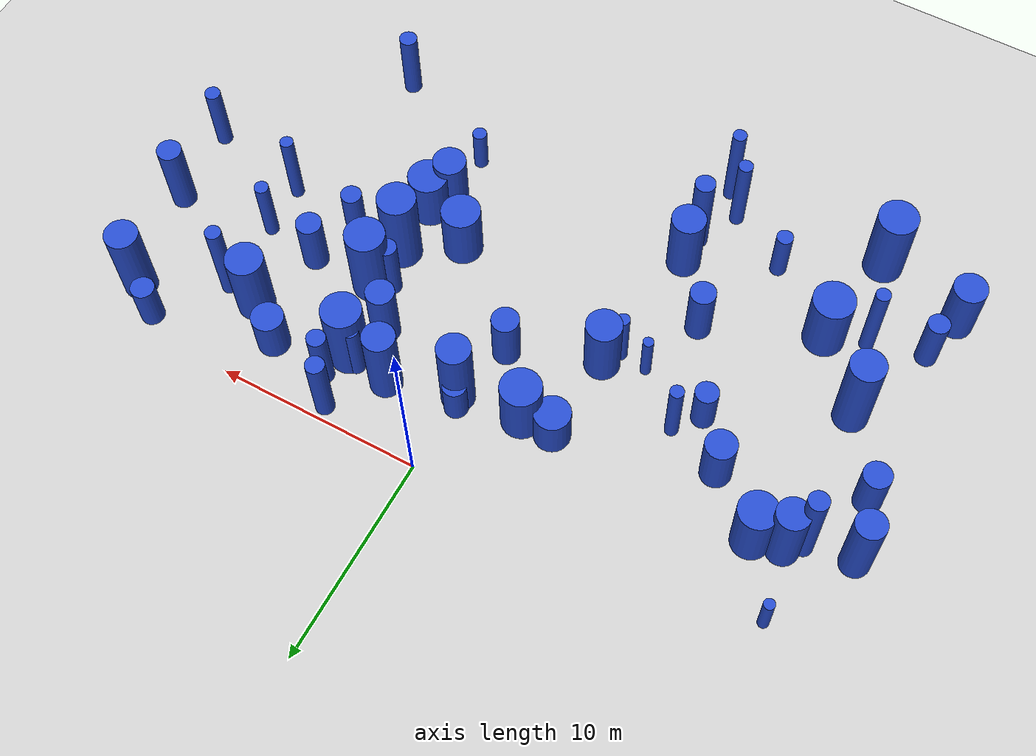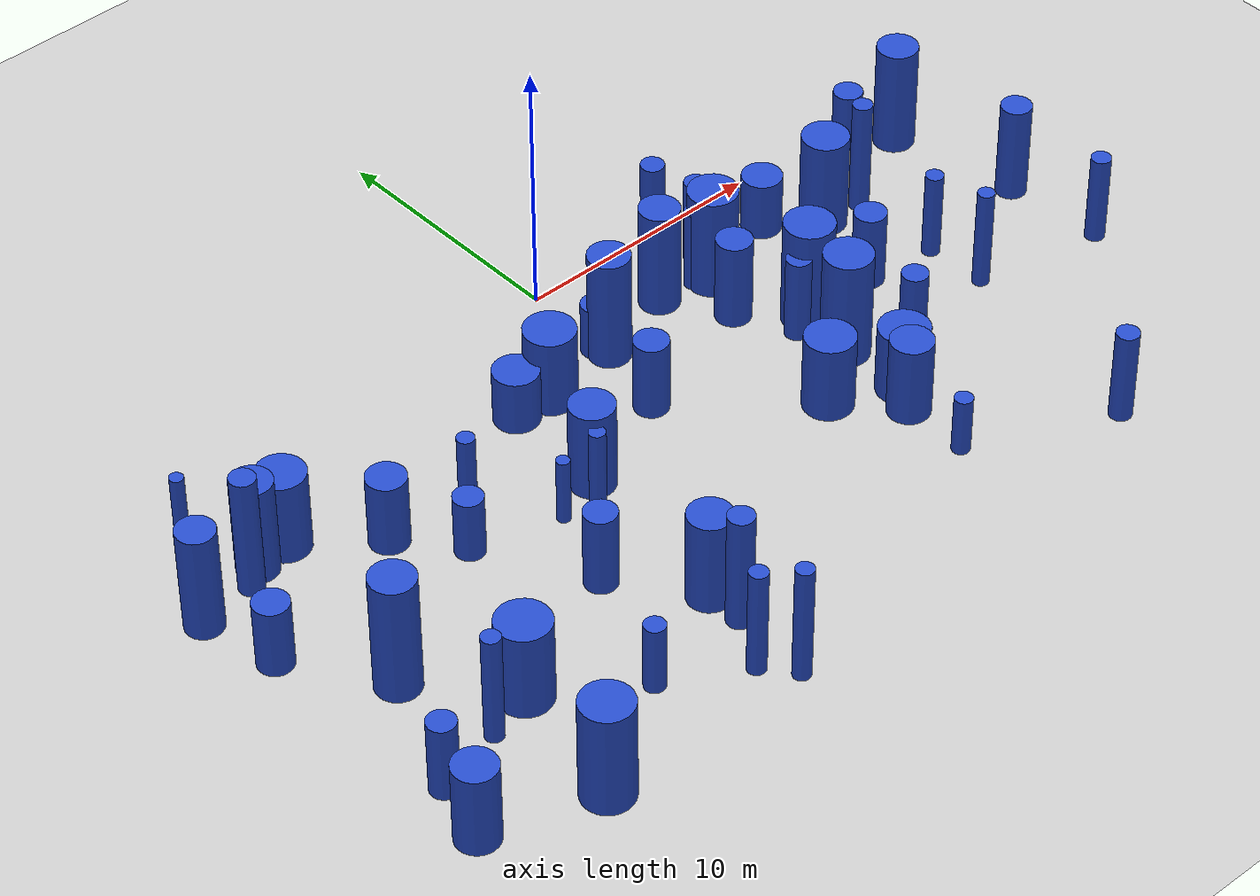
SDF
<sdf version="1.7">
 <world name="default">
  <model name="ground_plane">
   <static>1</static>
   <link name="link">
    <collision name="collision">
     <geometry><plane><normal>0 0 1</normal><size>100 100</size></plane></geometry>
     <surface>
      <contact><collide_bitmask>65535</collide_bitmask></contact>
      <friction><ode><mu>100</mu><mu2>50</mu2></ode></friction>
     </surface>
    </collision>
    <visual name="visual">
     <cast_shadows>0</cast_shadows>
     <geometry><plane><normal>0 0 1</normal><size>100 100</size></plane></geometry>
     <material>
      <script><uri>file://media/materials/scripts/gazebo.material</uri><name>Gazebo/Grey</name></script>
     </material>
    </visual>
   </link>
  </model>
  <model name="6">
   <static>0</static>
   <link name="link">
    <inertial>
     <mass>2</mass>
     <inertia><ixx>1.16849</ixx><ixy>0</ixy><ixz>0</ixz><iyy>1.16849</iyy><iyz>0</iyz><izz>0.30328</izz></inertia>
    </inertial>
    <collision name="collision">
     <geometry><cylinder><length>2.47004</length><radius>0.550708</radius></cylinder></geometry>
     <surface><contact><collide_without_contact>1</collide_without_contact></contact></surface>
    </collision>
    <visual name="visual">
     <geometry><cylinder><length>2.47004</length><radius>0.550708</radius></cylinder></geometry>
     <material>
      <script><uri>file://media/materials/scripts/gazebo.material</uri><name>Gazebo/Blue</name></script>
     </material>
    </visual>
    <gravity>0</gravity>
   </link>
   <pose>-10.2072 -8.31886 1.23502 0 -0 0</pose>
  </model>
  <model name="28">
   <static>0</static>
   <link name="link">
    <inertial>
     <mass>2</mass>
     <inertia><ixx>1.94852</ixx><ixy>0</ixy><ixz>0</ixz><iyy>1.94852</iyy><iyz>0</iyz><izz>0.176047</izz></inertia>
    </inertial>
    <collision name="collision">
     <geometry><cylinder><length>3.3411</length><radius>0.41958</radius></cylinder></geometry>
     <surface><contact><collide_without_contact>1</collide_without_contact></contact></surface>
    </collision>
    <visual name="visual">
     <geometry><cylinder><length>3.3411</length><radius>0.41958</radius></cylinder></geometry>
     <material>
      <script><uri>file://media/materials/scripts/gazebo.material</uri><name>Gazebo/Blue</name></script>
     </material>
    </visual>
    <gravity>0</gravity>
   </link>
   <pose>4.86112 -3.12202 1.67055 0 -0 0</pose>
  </model>
  <model name="40">
   <static>0</static>
   <link name="link">
    <inertial>
     <mass>2</mass>
     <inertia><ixx>2.63983</ixx><ixy>0</ixy><ixz>0</ixz><iyy>2.63983</iyy><iyz>0</iyz><izz>0.666975</izz></inertia>
    </inertial>
    <collision name="collision">
     <geometry><cylinder><length>3.71996</length><radius>0.816686</radius></cylinder></geometry>
     <surface><contact><collide_without_contact>1</collide_without_contact></contact></surface>
    </collision>
    <visual name="visual">
     <geometry><cylinder><length>3.71996</length><radius>0.816686</radius></cylinder></geometry>
     <material>
      <script><uri>file://media/materials/scripts/gazebo.material</uri><name>Gazebo/Blue</name></script>
     </material>
    </visual>
    <gravity>0</gravity>
   </link>
   <pose>-5.79736 -15.3255 1.85998 0 -0 0</pose>
  </model>
  <model name="67">
   <static>0</static>
   <link name="link">
    <inertial>
     <mass>2</mass>
     <inertia><ixx>2.79637</ixx><ixy>0</ixy><ixz>0</ixz><iyy>2.79637</iyy><iyz>0</iyz><izz>0.102595</izz></inertia>
    </inertial>
    <collision name="collision">
     <geometry><cylinder><length>4.05837</length><radius>0.320305</radius></cylinder></geometry>
     <surface><contact><collide_without_contact>1</collide_without_contact></contact></surface>
    </collision>
    <visual name="visual">
     <geometry><cylinder><length>4.05837</length><radius>0.320305</radius></cylinder></geometry>
     <material>
      <script><uri>file://media/materials/scripts/gazebo.material</uri><name>Gazebo/Blue</name></script>
     </material>
    </visual>
    <gravity>0</gravity>
   </link>
   <pose>12.5441 -9.98519 2.02919 0 -0 0</pose>
  </model>
  <model name="76">
   <static>0</static>
   <link name="link">
    <inertial>
     <mass>2</mass>
     <inertia><ixx>2.26784</ixx><ixy>0</ixy><ixz>0</ixz><iyy>2.26784</iyy><iyz>0</iyz><izz>0.465328</izz></inertia>
    </inertial>
    <collision name="collision">
     <geometry><cylinder><length>3.49443</length><radius>0.68215</radius></cylinder></geometry>
     <surface><contact><collide_without_contact>1</collide_without_contact></contact></surface>
    </collision>
    <visual name="visual">
     <geometry><cylinder><length>3.49443</length><radius>0.68215</radius></cylinder></geometry>
     <material>
      <script><uri>file://media/materials/scripts/gazebo.material</uri><name>Gazebo/Blue</name></script>
     </material>
    </visual>
    <gravity>0</gravity>
   </link>
   <pose>4.65201 -5.35189 1.74722 0 -0 0</pose>
  </model>
  <model name="80">
   <static>0</static>
   <link name="link">
    <inertial>
     <mass>2</mass>
     <inertia><ixx>3.71121</ixx><ixy>0</ixy><ixz>0</ixz><iyy>3.71121</iyy><iyz>0</iyz><izz>0.629149</izz></inertia>
    </inertial>
    <collision name="collision">
     <geometry><cylinder><length>4.5144</length><radius>0.793189</radius></cylinder></geometry>
     <surface><contact><collide_without_contact>1</collide_without_contact></contact></surface>
    </collision>
    <visual name="visual">
     <geometry><cylinder><length>4.5144</length><radius>0.793189</radius></cylinder></geometry>
     <material>
      <script><uri>file://media/materials/scripts/gazebo.material</uri><name>Gazebo/Blue</name></script>
     </material>
    </visual>
    <gravity>0</gravity>
   </link>
   <pose>-0.023101 -3.96132 2.2572 0 -0 0</pose>
  </model>
  <model name="81">
   <static>0</static>
   <link name="link">
    <inertial>
     <mass>2</mass>
     <inertia><ixx>2.09463</ixx><ixy>0</ixy><ixz>0</ixz><iyy>2.09463</iyy><iyz>0</iyz><izz>0.116243</izz></inertia>
    </inertial>
    <collision name="collision">
     <geometry><cylinder><length>3.49558</length><radius>0.340944</radius></cylinder></geometry>
     <surface><contact><collide_without_contact>1</collide_without_contact></contact></surface>
    </collision>
    <visual name="visual">
     <geometry><cylinder><length>3.49558</length><radius>0.340944</radius></cylinder></geometry>
     <material>
      <script><uri>file://media/materials/scripts/gazebo.material</uri><name>Gazebo/Blue</name></script>
     </material>
    </visual>
    <gravity>0</gravity>
   </link>
   <pose>12.4398 -7.55854 1.74779 0 -0 0</pose>
  </model>
  <model name="98">
   <static>0</static>
   <link name="link">
    <inertial>
     <mass>2</mass>
     <inertia><ixx>3.32763</ixx><ixy>0</ixy><ixz>0</ixz><iyy>3.32763</iyy><iyz>0</iyz><izz>0.121645</izz></inertia>
    </inertial>
    <collision name="collision">
     <geometry><cylinder><length>4.42729</length><radius>0.348777</radius></cylinder></geometry>
     <surface><contact><collide_without_contact>1</collide_without_contact></contact></surface>
    </collision>
    <visual name="visual">
     <geometry><cylinder><length>4.42729</length><radius>0.348777</radius></cylinder></geometry>
     <material>
      <script><uri>file://media/materials/scripts/gazebo.material</uri><name>Gazebo/Blue</name></script>
     </material>
    </visual>
    <gravity>0</gravity>
   </link>
   <pose>-15.192 -15.3643 2.21364 0 -0 0</pose>
  </model>
  <model name="110">
   <static>0</static>
   <link name="link">
    <inertial>
     <mass>2</mass>
     <inertia><ixx>3.46082</ixx><ixy>0</ixy><ixz>0</ixz><iyy>3.46082</iyy><iyz>0</iyz><izz>0.623462</izz></inertia>
    </inertial>
    <collision name="collision">
     <geometry><cylinder><length>4.34679</length><radius>0.789596</radius></cylinder></geometry>
     <surface><contact><collide_without_contact>1</collide_without_contact></contact></surface>
    </collision>
    <visual name="visual">
     <geometry><cylinder><length>4.34679</length><radius>0.789596</radius></cylinder></geometry>
     <material>
      <script><uri>file://media/materials/scripts/gazebo.material</uri><name>Gazebo/Blue</name></script>
     </material>
    </visual>
    <gravity>0</gravity>
   </link>
   <pose>16.1069 -1.96829 2.17339 0 -0 0</pose>
  </model>
  <model name="122">
   <static>0</static>
   <link name="link">
    <inertial>
     <mass>2</mass>
     <inertia><ixx>3.02054</ixx><ixy>0</ixy><ixz>0</ixz><iyy>3.02054</iyy><iyz>0</iyz><izz>0.797746</izz></inertia>
    </inertial>
    <collision name="collision">
     <geometry><cylinder><length>3.9661</length><radius>0.893166</radius></cylinder></geometry>
     <surface><contact><collide_without_contact>1</collide_without_contact></contact></surface>
    </collision>
    <visual name="visual">
     <geometry><cylinder><length>3.9661</length><radius>0.893166</radius></cylinder></geometry>
     <material>
      <script><uri>file://media/materials/scripts/gazebo.material</uri><name>Gazebo/Blue</name></script>
     </material>
    </visual>
    <gravity>0</gravity>
   </link>
   <pose>10.7219 -3.69549 1.98305 0 -0 0</pose>
  </model>
  <model name="139">
   <static>0</static>
   <link name="link">
    <inertial>
     <mass>2</mass>
     <inertia><ixx>2.7254</ixx><ixy>0</ixy><ixz>0</ixz><iyy>2.7254</iyy><iyz>0</iyz><izz>0.347029</izz></inertia>
    </inertial>
    <collision name="collision">
     <geometry><cylinder><length>3.91297</length><radius>0.589092</radius></cylinder></geometry>
     <surface><contact><collide_without_contact>1</collide_without_contact></contact></surface>
    </collision>
    <visual name="visual">
     <geometry><cylinder><length>3.91297</length><radius>0.589092</radius></cylinder></geometry>
     <material>
      <script><uri>file://media/materials/scripts/gazebo.material</uri><name>Gazebo/Blue</name></script>
     </material>
    </visual>
    <gravity>0</gravity>
   </link>
   <pose>17.177 -7.04162 1.95648 0 -0 0</pose>
  </model>
  <model name="142">
   <static>0</static>
   <link name="link">
    <inertial>
     <mass>2</mass>
     <inertia><ixx>2.45958</ixx><ixy>0</ixy><ixz>0</ixz><iyy>2.45958</iyy><iyz>0</iyz><izz>0.99276</izz></inertia>
    </inertial>
    <collision name="collision">
     <geometry><cylinder><length>3.43208</length><radius>0.996374</radius></cylinder></geometry>
     <surface><contact><collide_without_contact>1</collide_without_contact></contact></surface>
    </collision>
    <visual name="visual">
     <geometry><cylinder><length>3.43208</length><radius>0.996374</radius></cylinder></geometry>
     <material>
      <script><uri>file://media/materials/scripts/gazebo.material</uri><name>Gazebo/Blue</name></script>
     </material>
    </visual>
    <gravity>0</gravity>
   </link>
   <pose>-13.3166 -14.7149 1.71604 0 -0 0</pose>
  </model>
  <model name="156">
   <static>0</static>
   <link name="link">
    <inertial>
     <mass>2</mass>
     <inertia><ixx>2.3637</ixx><ixy>0</ixy><ixz>0</ixz><iyy>2.3637</iyy><iyz>0</iyz><izz>0.186598</izz></inertia>
    </inertial>
    <collision name="collision">
     <geometry><cylinder><length>3.69085</length><radius>0.431969</radius></cylinder></geometry>
     <surface><contact><collide_without_contact>1</collide_without_contact></contact></surface>
    </collision>
    <visual name="visual">
     <geometry><cylinder><length>3.69085</length><radius>0.431969</radius></cylinder></geometry>
     <material>
      <script><uri>file://media/materials/scripts/gazebo.material</uri><name>Gazebo/Blue</name></script>
     </material>
    </visual>
    <gravity>0</gravity>
   </link>
   <pose>10.9457 -18.298 1.84543 0 -0 0</pose>
  </model>
  <model name="163">
   <static>0</static>
   <link name="link">
    <inertial>
     <mass>2</mass>
     <inertia><ixx>3.32373</ixx><ixy>0</ixy><ixz>0</ixz><iyy>3.32373</iyy><iyz>0</iyz><izz>0.890012</izz></inertia>
    </inertial>
    <collision name="collision">
     <geometry><cylinder><length>4.156</length><radius>0.943405</radius></cylinder></geometry>
     <surface><contact><collide_without_contact>1</collide_without_contact></contact></surface>
    </collision>
    <visual name="visual">
     <geometry><cylinder><length>4.156</length><radius>0.943405</radius></cylinder></geometry>
     <material>
      <script><uri>file://media/materials/scripts/gazebo.material</uri><name>Gazebo/Blue</name></script>
     </material>
    </visual>
    <gravity>0</gravity>
   </link>
   <pose>5.40554 -3.43404 2.078 0 -0 0</pose>
  </model>
  <model name="192">
   <static>0</static>
   <link name="link">
    <inertial>
     <mass>2</mass>
     <inertia><ixx>1.66723</ixx><ixy>0</ixy><ixz>0</ixz><iyy>1.66723</iyy><iyz>0</iyz><izz>0.270355</izz></inertia>
    </inertial>
    <collision name="collision">
     <geometry><cylinder><length>3.03188</length><radius>0.519957</radius></cylinder></geometry>
     <surface><contact><collide_without_contact>1</collide_without_contact></contact></surface>
    </collision>
    <visual name="visual">
     <geometry><cylinder><length>3.03188</length><radius>0.519957</radius></cylinder></geometry>
     <material>
      <script><uri>file://media/materials/scripts/gazebo.material</uri><name>Gazebo/Blue</name></script>
     </material>
    </visual>
    <gravity>0</gravity>
   </link>
   <pose>-17.8523 -16.0476 1.51594 0 -0 0</pose>
  </model>
  <model name="226">
   <static>0</static>
   <link name="link">
    <inertial>
     <mass>2</mass>
     <inertia><ixx>2.07399</ixx><ixy>0</ixy><ixz>0</ixz><iyy>2.07399</iyy><iyz>0</iyz><izz>0.204974</izz></inertia>
    </inertial>
    <collision name="collision">
     <geometry><cylinder><length>3.43933</length><radius>0.45274</radius></cylinder></geometry>
     <surface><contact><collide_without_contact>1</collide_without_contact></contact></surface>
    </collision>
    <visual name="visual">
     <geometry><cylinder><length>3.43933</length><radius>0.45274</radius></cylinder></geometry>
     <material>
      <script><uri>file://media/materials/scripts/gazebo.material</uri><name>Gazebo/Blue</name></script>
     </material>
    </visual>
    <gravity>0</gravity>
   </link>
   <pose>5.89628 -2.02485 1.71967 0 -0 0</pose>
  </model>
  <model name="228">
   <static>0</static>
   <link name="link">
    <inertial>
     <mass>2</mass>
     <inertia><ixx>3.586</ixx><ixy>0</ixy><ixz>0</ixz><iyy>3.586</iyy><iyz>0</iyz><izz>0.906803</izz></inertia>
    </inertial>
    <collision name="collision">
     <geometry><cylinder><length>4.33539</length><radius>0.952262</radius></cylinder></geometry>
     <surface><contact><collide_without_contact>1</collide_without_contact></contact></surface>
    </collision>
    <visual name="visual">
     <geometry><cylinder><length>4.33539</length><radius>0.952262</radius></cylinder></geometry>
     <material>
      <script><uri>file://media/materials/scripts/gazebo.material</uri><name>Gazebo/Blue</name></script>
     </material>
    </visual>
    <gravity>0</gravity>
   </link>
   <pose>6.51412 -7.20933 2.16769 0 -0 0</pose>
  </model>
  <model name="233">
   <static>0</static>
   <link name="link">
    <inertial>
     <mass>2</mass>
     <inertia><ixx>3.66033</ixx><ixy>0</ixy><ixz>0</ixz><iyy>3.66033</iyy><iyz>0</iyz><izz>0.144052</izz></inertia>
    </inertial>
    <collision name="collision">
     <geometry><cylinder><length>4.64003</length><radius>0.379542</radius></cylinder></geometry>
     <surface><contact><collide_without_contact>1</collide_without_contact></contact></surface>
    </collision>
    <visual name="visual">
     <geometry><cylinder><length>4.64003</length><radius>0.379542</radius></cylinder></geometry>
     <material>
      <script><uri>file://media/materials/scripts/gazebo.material</uri><name>Gazebo/Blue</name></script>
     </material>
    </visual>
    <gravity>0</gravity>
   </link>
   <pose>12.3807 -3.8912 2.32001 0 -0 0</pose>
  </model>
  <model name="244">
   <static>0</static>
   <link name="link">
    <inertial>
     <mass>2</mass>
     <inertia><ixx>2.89546</ixx><ixy>0</ixy><ixz>0</ixz><iyy>2.89546</iyy><iyz>0</iyz><izz>0.586213</izz></inertia>
    </inertial>
    <collision name="collision">
     <geometry><cylinder><length>3.95147</length><radius>0.765645</radius></cylinder></geometry>
     <surface><contact><collide_without_contact>1</collide_without_contact></contact></surface>
    </collision>
    <visual name="visual">
     <geometry><cylinder><length>3.95147</length><radius>0.765645</radius></cylinder></geometry>
     <material>
      <script><uri>file://media/materials/scripts/gazebo.material</uri><name>Gazebo/Blue</name></script>
     </material>
    </visual>
    <gravity>0</gravity>
   </link>
   <pose>-15.9743 -4.21282 1.97574 0 -0 0</pose>
  </model>
  <model name="263">
   <static>0</static>
   <link name="link">
    <inertial>
     <mass>2</mass>
     <inertia><ixx>0.907717</ixx><ixy>0</ixy><ixz>0</ixz><iyy>0.907717</iyy><iyz>0</iyz><izz>0.3185</izz></inertia>
    </inertial>
    <collision name="collision">
     <geometry><cylinder><length>2.11915</length><radius>0.564358</radius></cylinder></geometry>
     <surface><contact><collide_without_contact>1</collide_without_contact></contact></surface>
    </collision>
    <visual name="visual">
     <geometry><cylinder><length>2.11915</length><radius>0.564358</radius></cylinder></geometry>
     <material>
      <script><uri>file://media/materials/scripts/gazebo.material</uri><name>Gazebo/Blue</name></script>
     </material>
    </visual>
    <gravity>0</gravity>
   </link>
   <pose>-0.213198 -3.45792 1.05958 0 -0 0</pose>
  </model>
  <model name="271">
   <static>0</static>
   <link name="link">
    <inertial>
     <mass>2</mass>
     <inertia><ixx>2.10472</ixx><ixy>0</ixy><ixz>0</ixz><iyy>2.10472</iyy><iyz>0</iyz><izz>0.064285</izz></inertia>
    </inertial>
    <collision name="collision">
     <geometry><cylinder><length>3.5264</length><radius>0.253545</radius></cylinder></geometry>
     <surface><contact><collide_without_contact>1</collide_without_contact></contact></surface>
    </collision>
    <visual name="visual">
     <geometry><cylinder><length>3.5264</length><radius>0.253545</radius></cylinder></geometry>
     <material>
      <script><uri>file://media/materials/scripts/gazebo.material</uri><name>Gazebo/Blue</name></script>
     </material>
    </visual>
    <gravity>0</gravity>
   </link>
   <pose>5.84705 -3.05767 1.7632 0 -0 0</pose>
  </model>
  <model name="276">
   <static>0</static>
   <link name="link">
    <inertial>
     <mass>2</mass>
     <inertia><ixx>2.0382</ixx><ixy>0</ixy><ixz>0</ixz><iyy>2.0382</iyy><iyz>0</iyz><izz>0.891258</izz></inertia>
    </inertial>
    <collision name="collision">
     <geometry><cylinder><length>3.09118</length><radius>0.944065</radius></cylinder></geometry>
     <surface><contact><collide_without_contact>1</collide_without_contact></contact></surface>
    </collision>
    <visual name="visual">
     <geometry><cylinder><length>3.09118</length><radius>0.944065</radius></cylinder></geometry>
     <material>
      <script><uri>file://media/materials/scripts/gazebo.material</uri><name>Gazebo/Blue</name></script>
     </material>
    </visual>
    <gravity>0</gravity>
   </link>
   <pose>3.81615 -11.0643 1.54559 0 -0 0</pose>
  </model>
  <model name="284">
   <static>0</static>
   <link name="link">
    <inertial>
     <mass>2</mass>
     <inertia><ixx>2.1319</ixx><ixy>0</ixy><ixz>0</ixz><iyy>2.1319</iyy><iyz>0</iyz><izz>0.93525</izz></inertia>
    </inertial>
    <collision name="collision">
     <geometry><cylinder><length>3.16001</length><radius>0.967083</radius></cylinder></geometry>
     <surface><contact><collide_without_contact>1</collide_without_contact></contact></surface>
    </collision>
    <visual name="visual">
     <geometry><cylinder><length>3.16001</length><radius>0.967083</radius></cylinder></geometry>
     <material>
      <script><uri>file://media/materials/scripts/gazebo.material</uri><name>Gazebo/Blue</name></script>
     </material>
    </visual>
    <gravity>0</gravity>
   </link>
   <pose>-3.10761 -4.32778 1.58 0 -0 0</pose>
  </model>
  <model name="292">
   <static>0</static>
   <link name="link">
    <inertial>
     <mass>2</mass>
     <inertia><ixx>1.13013</ixx><ixy>0</ixy><ixz>0</ixz><iyy>1.13013</iyy><iyz>0</iyz><izz>0.317248</izz></inertia>
    </inertial>
    <collision name="collision">
     <geometry><cylinder><length>2.41434</length><radius>0.563248</radius></cylinder></geometry>
     <surface><contact><collide_without_contact>1</collide_without_contact></contact></surface>
    </collision>
    <visual name="visual">
     <geometry><cylinder><length>2.41434</length><radius>0.563248</radius></cylinder></geometry>
     <material>
      <script><uri>file://media/materials/scripts/gazebo.material</uri><name>Gazebo/Blue</name></script>
     </material>
    </visual>
    <gravity>0</gravity>
   </link>
   <pose>14.6753 -0.89582 1.20717 0 -0 0</pose>
  </model>
  <model name="293">
   <static>0</static>
   <link name="link">
    <inertial>
     <mass>2</mass>
     <inertia><ixx>3.19014</ixx><ixy>0</ixy><ixz>0</ixz><iyy>3.19014</iyy><iyz>0</iyz><izz>0.120581</izz></inertia>
    </inertial>
    <collision name="collision">
     <geometry><cylinder><length>4.33348</length><radius>0.347248</radius></cylinder></geometry>
     <surface><contact><collide_without_contact>1</collide_without_contact></contact></surface>
    </collision>
    <visual name="visual">
     <geometry><cylinder><length>4.33348</length><radius>0.347248</radius></cylinder></geometry>
     <material>
      <script><uri>file://media/materials/scripts/gazebo.material</uri><name>Gazebo/Blue</name></script>
     </material>
    </visual>
    <gravity>0</gravity>
   </link>
   <pose>-6.95484 -18.8155 2.16674 0 -0 0</pose>
  </model>
  <model name="298">
   <static>0</static>
   <link name="link">
    <inertial>
     <mass>2</mass>
     <inertia><ixx>2.66262</ixx><ixy>0</ixy><ixz>0</ixz><iyy>2.66262</iyy><iyz>0</iyz><izz>0.202334</izz></inertia>
    </inertial>
    <collision name="collision">
     <geometry><cylinder><length>3.9203</length><radius>0.449815</radius></cylinder></geometry>
     <surface><contact><collide_without_contact>1</collide_without_contact></contact></surface>
    </collision>
    <visual name="visual">
     <geometry><cylinder><length>3.9203</length><radius>0.449815</radius></cylinder></geometry>
     <material>
      <script><uri>file://media/materials/scripts/gazebo.material</uri><name>Gazebo/Blue</name></script>
     </material>
    </visual>
    <gravity>0</gravity>
   </link>
   <pose>5.02042 -0.673322 1.96015 0 -0 0</pose>
  </model>
  <model name="308">
   <static>0</static>
   <link name="link">
    <inertial>
     <mass>2</mass>
     <inertia><ixx>2.47748</ixx><ixy>0</ixy><ixz>0</ixz><iyy>2.47748</iyy><iyz>0</iyz><izz>0.710969</izz></inertia>
    </inertial>
    <collision name="collision">
     <geometry><cylinder><length>3.56819</length><radius>0.84319</radius></cylinder></geometry>
     <surface><contact><collide_without_contact>1</collide_without_contact></contact></surface>
    </collision>
    <visual name="visual">
     <geometry><cylinder><length>3.56819</length><radius>0.84319</radius></cylinder></geometry>
     <material>
      <script><uri>file://media/materials/scripts/gazebo.material</uri><name>Gazebo/Blue</name></script>
     </material>
    </visual>
    <gravity>0</gravity>
   </link>
   <pose>-4.9483 -8.58753 1.78409 0 -0 0</pose>
  </model>
  <model name="310">
   <static>0</static>
   <link name="link">
    <inertial>
     <mass>2</mass>
     <inertia><ixx>1.3329</ixx><ixy>0</ixy><ixz>0</ixz><iyy>1.3329</iyy><iyz>0</iyz><izz>0.156162</izz></inertia>
    </inertial>
    <collision name="collision">
     <geometry><cylinder><length>2.74389</length><radius>0.395173</radius></cylinder></geometry>
     <surface><contact><collide_without_contact>1</collide_without_contact></contact></surface>
    </collision>
    <visual name="visual">
     <geometry><cylinder><length>2.74389</length><radius>0.395173</radius></cylinder></geometry>
     <material>
      <script><uri>file://media/materials/scripts/gazebo.material</uri><name>Gazebo/Blue</name></script>
     </material>
    </visual>
    <gravity>0</gravity>
   </link>
   <pose>-9.90591 -17.1554 1.37194 0 -0 0</pose>
  </model>
  <model name="313">
   <static>0</static>
   <link name="link">
    <inertial>
     <mass>2</mass>
     <inertia><ixx>1.68863</ixx><ixy>0</ixy><ixz>0</ixz><iyy>1.68863</iyy><iyz>0</iyz><izz>0.539098</izz></inertia>
    </inertial>
    <collision name="collision">
     <geometry><cylinder><length>2.91796</length><radius>0.734233</radius></cylinder></geometry>
     <surface><contact><collide_without_contact>1</collide_without_contact></contact></surface>
    </collision>
    <visual name="visual">
     <geometry><cylinder><length>2.91796</length><radius>0.734233</radius></cylinder></geometry>
     <material>
      <script><uri>file://media/materials/scripts/gazebo.material</uri><name>Gazebo/Blue</name></script>
     </material>
    </visual>
    <gravity>0</gravity>
   </link>
   <pose>-11.8883 -6.12727 1.45898 0 -0 0</pose>
  </model>
  <model name="317">
   <static>0</static>
   <link name="link">
    <inertial>
     <mass>2</mass>
     <inertia><ixx>3.7708</ixx><ixy>0</ixy><ixz>0</ixz><iyy>3.7708</iyy><iyz>0</iyz><izz>0.112661</izz></inertia>
    </inertial>
    <collision name="collision">
     <geometry><cylinder><length>4.72089</length><radius>0.335649</radius></cylinder></geometry>
     <surface><contact><collide_without_contact>1</collide_without_contact></contact></surface>
    </collision>
    <visual name="visual">
     <geometry><cylinder><length>4.72089</length><radius>0.335649</radius></cylinder></geometry>
     <material>
      <script><uri>file://media/materials/scripts/gazebo.material</uri><name>Gazebo/Blue</name></script>
     </material>
    </visual>
    <gravity>0</gravity>
   </link>
   <pose>-6.0566 -19.9958 2.36045 0 -0 0</pose>
  </model>
  <model name="327">
   <static>0</static>
   <link name="link">
    <inertial>
     <mass>2</mass>
     <inertia><ixx>3.75409</ixx><ixy>0</ixy><ixz>0</ixz><iyy>3.75409</iyy><iyz>0</iyz><izz>0.234612</izz></inertia>
    </inertial>
    <collision name="collision">
     <geometry><cylinder><length>4.67126</length><radius>0.484368</radius></cylinder></geometry>
     <surface><contact><collide_without_contact>1</collide_without_contact></contact></surface>
    </collision>
    <visual name="visual">
     <geometry><cylinder><length>4.67126</length><radius>0.484368</radius></cylinder></geometry>
     <material>
      <script><uri>file://media/materials/scripts/gazebo.material</uri><name>Gazebo/Blue</name></script>
     </material>
    </visual>
    <gravity>0</gravity>
   </link>
   <pose>-5.82008 -16.8033 2.33563 0 -0 0</pose>
  </model>
  <model name="332">
   <static>0</static>
   <link name="link">
    <inertial>
     <mass>2</mass>
     <inertia>
      <ixx>0.935174</ixx>
      <ixy>0</ixy>
      <ixz>0</ixz>
      <iyy>0.935174</iyy>
      <iyz>0</iyz>
      <izz>0.252871</izz>
     </inertia>
    </inertial>
    <collision name="collision">
     <geometry><cylinder><length>2.20282</length><radius>0.502863</radius></cylinder></geometry>
     <surface><contact><collide_without_contact>1</collide_without_contact></contact></surface>
    </collision>
    <visual name="visual">
     <geometry><cylinder><length>2.20282</length><radius>0.502863</radius></cylinder></geometry>
     <material>
      <script><uri>file://media/materials/scripts/gazebo.material</uri><name>Gazebo/Blue</name></script>
     </material>
    </visual>
    <gravity>0</gravity>
   </link>
   <pose>9.16867 -9.90152 1.10141 0 -0 0</pose>
  </model>
  <model name="339">
   <static>0</static>
   <link name="link">
    <inertial>
     <mass>2</mass>
     <inertia><ixx>4.12566</ixx><ixy>0</ixy><ixz>0</ixz><iyy>4.12566</iyy><iyz>0</iyz><izz>0.223047</izz></inertia>
    </inertial>
    <collision name="collision">
     <geometry><cylinder><length>4.90763</length><radius>0.472279</radius></cylinder></geometry>
     <surface><contact><collide_without_contact>1</collide_without_contact></contact></surface>
    </collision>
    <visual name="visual">
     <geometry><cylinder><length>4.90763</length><radius>0.472279</radius></cylinder></geometry>
     <material>
      <script><uri>file://media/materials/scripts/gazebo.material</uri><name>Gazebo/Blue</name></script>
     </material>
    </visual>
    <gravity>0</gravity>
   </link>
   <pose>-16.6864 -4.7741 2.45381 0 -0 0</pose>
  </model>
  <model name="343">
   <static>0</static>
   <link name="link">
    <inertial>
     <mass>2</mass>
     <inertia><ixx>1.87121</ixx><ixy>0</ixy><ixz>0</ixz><iyy>1.87121</iyy><iyz>0</iyz><izz>0.373129</izz></inertia>
    </inertial>
    <collision name="collision">
     <geometry><cylinder><length>3.17929</length><radius>0.610843</radius></cylinder></geometry>
     <surface><contact><collide_without_contact>1</collide_without_contact></contact></surface>
    </collision>
    <visual name="visual">
     <geometry><cylinder><length>3.17929</length><radius>0.610843</radius></cylinder></geometry>
     <material>
      <script><uri>file://media/materials/scripts/gazebo.material</uri><name>Gazebo/Blue</name></script>
     </material>
    </visual>
    <gravity>0</gravity>
   </link>
   <pose>-7.9807 -12.4049 1.58965 0 -0 0</pose>
  </model>
  <model name="355">
   <static>0</static>
   <link name="link">
    <inertial>
     <mass>2</mass>
     <inertia><ixx>1.75153</ixx><ixy>0</ixy><ixz>0</ixz><iyy>1.75153</iyy><iyz>0</iyz><izz>0.916445</izz></inertia>
    </inertial>
    <collision name="collision">
     <geometry><cylinder><length>2.78565</length><radius>0.957311</radius></cylinder></geometry>
     <surface><contact><collide_without_contact>1</collide_without_contact></contact></surface>
    </collision>
    <visual name="visual">
     <geometry><cylinder><length>2.78565</length><radius>0.957311</radius></cylinder></geometry>
     <material>
      <script><uri>file://media/materials/scripts/gazebo.material</uri><name>Gazebo/Blue</name></script>
     </material>
    </visual>
    <gravity>0</gravity>
   </link>
   <pose>6.29867 -12.2063 1.39283 0 -0 0</pose>
  </model>
  <model name="359">
   <static>0</static>
   <link name="link">
    <inertial>
     <mass>2</mass>
     <inertia><ixx>1.73351</ixx><ixy>0</ixy><ixz>0</ixz><iyy>1.73351</iyy><iyz>0</iyz><izz>0.426729</izz></inertia>
    </inertial>
    <collision name="collision">
     <geometry><cylinder><length>3.02008</length><radius>0.653245</radius></cylinder></geometry>
     <surface><contact><collide_without_contact>1</collide_without_contact></contact></surface>
    </collision>
    <visual name="visual">
     <geometry><cylinder><length>3.02008</length><radius>0.653245</radius></cylinder></geometry>
     <material>
      <script><uri>file://media/materials/scripts/gazebo.material</uri><name>Gazebo/Blue</name></script>
     </material>
    </visual>
    <gravity>0</gravity>
   </link>
   <pose>-0.819002 -7.01784 1.51004 0 -0 0</pose>
  </model>
  <model name="365">
   <static>0</static>
   <link name="link">
    <inertial>
     <mass>2</mass>
     <inertia>
      <ixx>0.961507</ixx>
      <ixy>0</ixy>
      <ixz>0</ixz>
      <iyy>0.961507</iyy>
      <iyz>0</iyz>
      <izz>0.117633</izz>
     </inertia>
    </inertial>
    <collision name="collision">
     <geometry><cylinder><length>2.32726</length><radius>0.342977</radius></cylinder></geometry>
     <surface><contact><collide_without_contact>1</collide_without_contact></contact></surface>
    </collision>
    <visual name="visual">
     <geometry><cylinder><length>2.32726</length><radius>0.342977</radius></cylinder></geometry>
     <material>
      <script><uri>file://media/materials/scripts/gazebo.material</uri><name>Gazebo/Blue</name></script>
     </material>
    </visual>
    <gravity>0</gravity>
   </link>
   <pose>5.55253 -15.8271 1.16363 0 -0 0</pose>
  </model>
  <model name="370">
   <static>0</static>
   <link name="link">
    <inertial>
     <mass>2</mass>
     <inertia><ixx>1.75541</ixx><ixy>0</ixy><ixz>0</ixz><iyy>1.75541</iyy><iyz>0</iyz><izz>0.372277</izz></inertia>
    </inertial>
    <collision name="collision">
     <geometry><cylinder><length>3.06849</length><radius>0.610145</radius></cylinder></geometry>
     <surface><contact><collide_without_contact>1</collide_without_contact></contact></surface>
    </collision>
    <visual name="visual">
     <geometry><cylinder><length>3.06849</length><radius>0.610145</radius></cylinder></geometry>
     <material>
      <script><uri>file://media/materials/scripts/gazebo.material</uri><name>Gazebo/Blue</name></script>
     </material>
    </visual>
    <gravity>0</gravity>
   </link>
   <pose>9.63777 -7.14001 1.53424 0 -0 0</pose>
  </model>
  <model name="374">
   <static>0</static>
   <link name="link">
    <inertial>
     <mass>2</mass>
     <inertia><ixx>2.31438</ixx><ixy>0</ixy><ixz>0</ixz><iyy>2.31438</iyy><iyz>0</iyz><izz>0.106819</izz></inertia>
    </inertial>
    <collision name="collision">
     <geometry><cylinder><length>3.68318</length><radius>0.326832</radius></cylinder></geometry>
     <surface><contact><collide_without_contact>1</collide_without_contact></contact></surface>
    </collision>
    <visual name="visual">
     <geometry><cylinder><length>3.68318</length><radius>0.326832</radius></cylinder></geometry>
     <material>
      <script><uri>file://media/materials/scripts/gazebo.material</uri><name>Gazebo/Blue</name></script>
     </material>
    </visual>
    <gravity>0</gravity>
   </link>
   <pose>-9.23743 -7.10983 1.84159 0 -0 0</pose>
  </model>
  <model name="390">
   <static>0</static>
   <link name="link">
    <inertial>
     <mass>2</mass>
     <inertia><ixx>3.30202</ixx><ixy>0</ixy><ixz>0</ixz><iyy>3.30202</iyy><iyz>0</iyz><izz>0.499873</izz></inertia>
    </inertial>
    <collision name="collision">
     <geometry><cylinder><length>4.27931</length><radius>0.707017</radius></cylinder></geometry>
     <surface><contact><collide_without_contact>1</collide_without_contact></contact></surface>
    </collision>
    <visual name="visual">
     <geometry><cylinder><length>4.27931</length><radius>0.707017</radius></cylinder></geometry>
     <material>
      <script><uri>file://media/materials/scripts/gazebo.material</uri><name>Gazebo/Blue</name></script>
     </material>
    </visual>
    <gravity>0</gravity>
   </link>
   <pose>-18.9429 -5.14863 2.13966 0 -0 0</pose>
  </model>
  <model name="396">
   <static>0</static>
   <link name="link">
    <inertial>
     <mass>2</mass>
     <inertia>
      <ixx>0.872137</ixx>
      <ixy>0</ixy>
      <ixz>0</ixz>
      <iyy>0.872137</iyy>
      <iyz>0</iyz>
      <izz>0.0681759</izz>
     </inertia>
    </inertial>
    <collision name="collision">
     <geometry><cylinder><length>2.24239</length><radius>0.261105</radius></cylinder></geometry>
     <surface><contact><collide_without_contact>1</collide_without_contact></contact></surface>
    </collision>
    <visual name="visual">
     <geometry><cylinder><length>2.24239</length><radius>0.261105</radius></cylinder></geometry>
     <material>
      <script><uri>file://media/materials/scripts/gazebo.material</uri><name>Gazebo/Blue</name></script>
     </material>
    </visual>
    <gravity>0</gravity>
   </link>
   <pose>-16.6334 -0.861944 1.12119 0 -0 0</pose>
  </model>
  <model name="405">
   <static>0</static>
   <link name="link">
    <inertial>
     <mass>2</mass>
     <inertia>
      <ixx>1.19733</ixx>
      <ixy>0</ixy>
      <ixz>0</ixz>
      <iyy>1.19733</iyy>
      <iyz>0</iyz>
      <izz>0.0637175</izz>
     </inertia>
    </inertial>
    <collision name="collision">
     <geometry><cylinder><length>2.64439</length><radius>0.252423</radius></cylinder></geometry>
     <surface><contact><collide_without_contact>1</collide_without_contact></contact></surface>
    </collision>
    <visual name="visual">
     <geometry><cylinder><length>2.64439</length><radius>0.252423</radius></cylinder></geometry>
     <material>
      <script><uri>file://media/materials/scripts/gazebo.material</uri><name>Gazebo/Blue</name></script>
     </material>
    </visual>
    <gravity>0</gravity>
   </link>
   <pose>-6.84782 -9.25591 1.3222 0 -0 0</pose>
  </model>
  <model name="409">
   <static>0</static>
   <link name="link">
    <inertial>
     <mass>2</mass>
     <inertia><ixx>2.2447</ixx><ixy>0</ixy><ixz>0</ixz><iyy>2.2447</iyy><iyz>0</iyz><izz>0.828914</izz></inertia>
    </inertial>
    <collision name="collision">
     <geometry><cylinder><length>3.31382</length><radius>0.910447</radius></cylinder></geometry>
     <surface><contact><collide_without_contact>1</collide_without_contact></contact></surface>
    </collision>
    <visual name="visual">
     <geometry><cylinder><length>3.31382</length><radius>0.910447</radius></cylinder></geometry>
     <material>
      <script><uri>file://media/materials/scripts/gazebo.material</uri><name>Gazebo/Blue</name></script>
     </material>
    </visual>
    <gravity>0</gravity>
   </link>
   <pose>-14.586 -3.95175 1.65691 0 -0 0</pose>
  </model>
  <model name="442">
   <static>0</static>
   <link name="link">
    <inertial>
     <mass>2</mass>
     <inertia><ixx>3.75596</ixx><ixy>0</ixy><ixz>0</ixz><iyy>3.75596</iyy><iyz>0</iyz><izz>0.848715</izz></inertia>
    </inertial>
    <collision name="collision">
     <geometry><cylinder><length>4.47098</length><radius>0.921257</radius></cylinder></geometry>
     <surface><contact><collide_without_contact>1</collide_without_contact></contact></surface>
    </collision>
    <visual name="visual">
     <geometry><cylinder><length>4.47098</length><radius>0.921257</radius></cylinder></geometry>
     <material>
      <script><uri>file://media/materials/scripts/gazebo.material</uri><name>Gazebo/Blue</name></script>
     </material>
    </visual>
    <gravity>0</gravity>
   </link>
   <pose>6.20694 -9.47049 2.23549 0 -0 0</pose>
  </model>
  <model name="445">
   <static>0</static>
   <link name="link">
    <inertial>
     <mass>2</mass>
     <inertia><ixx>2.02982</ixx><ixy>0</ixy><ixz>0</ixz><iyy>2.02982</iyy><iyz>0</iyz><izz>0.64287</izz></inertia>
    </inertial>
    <collision name="collision">
     <geometry><cylinder><length>3.20161</length><radius>0.801792</radius></cylinder></geometry>
     <surface><contact><collide_without_contact>1</collide_without_contact></contact></surface>
    </collision>
    <visual name="visual">
     <geometry><cylinder><length>3.20161</length><radius>0.801792</radius></cylinder></geometry>
     <material>
      <script><uri>file://media/materials/scripts/gazebo.material</uri><name>Gazebo/Blue</name></script>
     </material>
    </visual>
    <gravity>0</gravity>
   </link>
   <pose>5.65716 -13.1938 1.6008 0 -0 0</pose>
  </model>
  <model name="446">
   <static>0</static>
   <link name="link">
    <inertial>
     <mass>2</mass>
     <inertia><ixx>2.21939</ixx><ixy>0</ixy><ixz>0</ixz><iyy>2.21939</iyy><iyz>0</iyz><izz>0.142971</izz></inertia>
    </inertial>
    <collision name="collision">
     <geometry><cylinder><length>3.58991</length><radius>0.378114</radius></cylinder></geometry>
     <surface><contact><collide_without_contact>1</collide_without_contact></contact></surface>
    </collision>
    <visual name="visual">
     <geometry><cylinder><length>3.58991</length><radius>0.378114</radius></cylinder></geometry>
     <material>
      <script><uri>file://media/materials/scripts/gazebo.material</uri><name>Gazebo/Blue</name></script>
     </material>
    </visual>
    <gravity>0</gravity>
   </link>
   <pose>17.5035 -10.9751 1.79495 0 -0 0</pose>
  </model>
  <model name="449">
   <static>0</static>
   <link name="link">
    <inertial>
     <mass>2</mass>
     <inertia><ixx>2.02441</ixx><ixy>0</ixy><ixz>0</ixz><iyy>2.02441</iyy><iyz>0</iyz><izz>0.22915</izz></inertia>
    </inertial>
    <collision name="collision">
     <geometry><cylinder><length>3.38512</length><radius>0.478696</radius></cylinder></geometry>
     <surface><contact><collide_without_contact>1</collide_without_contact></contact></surface>
    </collision>
    <visual name="visual">
     <geometry><cylinder><length>3.38512</length><radius>0.478696</radius></cylinder></geometry>
     <material>
      <script><uri>file://media/materials/scripts/gazebo.material</uri><name>Gazebo/Blue</name></script>
     </material>
    </visual>
    <gravity>0</gravity>
   </link>
   <pose>5.68283 -7.57262 1.69256 0 -0 0</pose>
  </model>
  <model name="455">
   <static>0</static>
   <link name="link">
    <inertial>
     <mass>2</mass>
     <inertia><ixx>3.35732</ixx><ixy>0</ixy><ixz>0</ixz><iyy>3.35732</iyy><iyz>0</iyz><izz>0.589898</izz></inertia>
    </inertial>
    <collision name="collision">
     <geometry><cylinder><length>4.28651</length><radius>0.768048</radius></cylinder></geometry>
     <surface><contact><collide_without_contact>1</collide_without_contact></contact></surface>
    </collision>
    <visual name="visual">
     <geometry><cylinder><length>4.28651</length><radius>0.768048</radius></cylinder></geometry>
     <material>
      <script><uri>file://media/materials/scripts/gazebo.material</uri><name>Gazebo/Blue</name></script>
     </material>
    </visual>
    <gravity>0</gravity>
   </link>
   <pose>3.21447 -3.01818 2.14326 0 -0 0</pose>
  </model>
  <model name="457">
   <static>0</static>
   <link name="link">
    <inertial>
     <mass>2</mass>
     <inertia><ixx>1.22394</ixx><ixy>0</ixy><ixz>0</ixz><iyy>1.22394</iyy><iyz>0</iyz><izz>0.587418</izz></inertia>
    </inertial>
    <collision name="collision">
     <geometry><cylinder><length>2.3625</length><radius>0.766432</radius></cylinder></geometry>
     <surface><contact><collide_without_contact>1</collide_without_contact></contact></surface>
    </collision>
    <visual name="visual">
     <geometry><cylinder><length>2.3625</length><radius>0.766432</radius></cylinder></geometry>
     <material>
      <script><uri>file://media/materials/scripts/gazebo.material</uri><name>Gazebo/Blue</name></script>
     </material>
    </visual>
    <gravity>0</gravity>
   </link>
   <pose>8.86949 -2.35183 1.18125 0 -0 0</pose>
  </model>
  <model name="458">
   <static>0</static>
   <link name="link">
    <inertial>
     <mass>2</mass>
     <inertia><ixx>4.23371</ixx><ixy>0</ixy><ixz>0</ixz><iyy>4.23371</iyy><iyz>0</iyz><izz>0.688042</izz></inertia>
    </inertial>
    <collision name="collision">
     <geometry><cylinder><length>4.83096</length><radius>0.829483</radius></cylinder></geometry>
     <surface><contact><collide_without_contact>1</collide_without_contact></contact></surface>
    </collision>
    <visual name="visual">
     <geometry><cylinder><length>4.83096</length><radius>0.829483</radius></cylinder></geometry>
     <material>
      <script><uri>file://media/materials/scripts/gazebo.material</uri><name>Gazebo/Blue</name></script>
     </material>
    </visual>
    <gravity>0</gravity>
   </link>
   <pose>-16.0074 -11.5591 2.41548 0 -0 0</pose>
  </model>
  <model name="460">
   <static>0</static>
   <link name="link">
    <inertial>
     <mass>2</mass>
     <inertia><ixx>2.08228</ixx><ixy>0</ixy><ixz>0</ixz><iyy>2.08228</iyy><iyz>0</iyz><izz>0.635407</izz></inertia>
    </inertial>
    <collision name="collision">
     <geometry><cylinder><length>3.25384</length><radius>0.797124</radius></cylinder></geometry>
     <surface><contact><collide_without_contact>1</collide_without_contact></contact></surface>
    </collision>
    <visual name="visual">
     <geometry><cylinder><length>3.25384</length><radius>0.797124</radius></cylinder></geometry>
     <material>
      <script><uri>file://media/materials/scripts/gazebo.material</uri><name>Gazebo/Blue</name></script>
     </material>
    </visual>
    <gravity>0</gravity>
   </link>
   <pose>-18.4232 -18.33 1.62692 0 -0 0</pose>
  </model>
  <model name="466">
   <static>0</static>
   <link name="link">
    <inertial>
     <mass>2</mass>
     <inertia><ixx>3.3102</ixx><ixy>0</ixy><ixz>0</ixz><iyy>3.3102</iyy><iyz>0</iyz><izz>0.913904</izz></inertia>
    </inertial>
    <collision name="collision">
     <geometry><cylinder><length>4.13757</length><radius>0.955983</radius></cylinder></geometry>
     <surface><contact><collide_without_contact>1</collide_without_contact></contact></surface>
    </collision>
    <visual name="visual">
     <geometry><cylinder><length>4.13757</length><radius>0.955983</radius></cylinder></geometry>
     <material>
      <script><uri>file://media/materials/scripts/gazebo.material</uri><name>Gazebo/Blue</name></script>
     </material>
    </visual>
    <gravity>0</gravity>
   </link>
   <pose>-14.2093 -19.6888 2.06878 0 -0 0</pose>
  </model>
  <model name="469">
   <static>0</static>
   <link name="link">
    <inertial>
     <mass>2</mass>
     <inertia>
      <ixx>1.77056</ixx>
      <ixy>0</ixy>
      <ixz>0</ixz>
      <iyy>1.77056</iyy>
      <iyz>0</iyz>
      <izz>0.0951431</izz>
     </inertia>
    </inertial>
    <collision name="collision">
     <geometry><cylinder><length>3.21527</length><radius>0.308453</radius></cylinder></geometry>
     <surface><contact><collide_without_contact>1</collide_without_contact></contact></surface>
    </collision>
    <visual name="visual">
     <geometry><cylinder><length>3.21527</length><radius>0.308453</radius></cylinder></geometry>
     <material>
      <script><uri>file://media/materials/scripts/gazebo.material</uri><name>Gazebo/Blue</name></script>
     </material>
    </visual>
    <gravity>0</gravity>
   </link>
   <pose>-5.47825 -9.44564 1.60763 0 -0 0</pose>
  </model>
  <model name="477">
   <static>0</static>
   <link name="link">
    <inertial>
     <mass>2</mass>
     <inertia><ixx>1.47013</ixx><ixy>0</ixy><ixz>0</ixz><iyy>1.47013</iyy><iyz>0</iyz><izz>0.43214</izz></inertia>
    </inertial>
    <collision name="collision">
     <geometry><cylinder><length>2.74306</length><radius>0.657374</radius></cylinder></geometry>
     <surface><contact><collide_without_contact>1</collide_without_contact></contact></surface>
    </collision>
    <visual name="visual">
     <geometry><cylinder><length>2.74306</length><radius>0.657374</radius></cylinder></geometry>
     <material>
      <script><uri>file://media/materials/scripts/gazebo.material</uri><name>Gazebo/Blue</name></script>
     </material>
    </visual>
    <gravity>0</gravity>
   </link>
   <pose>-18.296 -8.08398 1.37153 0 -0 0</pose>
  </model>
  <model name="478">
   <static>0</static>
   <link name="link">
    <inertial>
     <mass>2</mass>
     <inertia><ixx>1.16497</ixx><ixy>0</ixy><ixz>0</ixz><iyy>1.16497</iyy><iyz>0</iyz><izz>0.738124</izz></inertia>
    </inertial>
    <collision name="collision">
     <geometry><cylinder><length>2.18528</length><radius>0.859141</radius></cylinder></geometry>
     <surface><contact><collide_without_contact>1</collide_without_contact></contact></surface>
    </collision>
    <visual name="visual">
     <geometry><cylinder><length>2.18528</length><radius>0.859141</radius></cylinder></geometry>
     <material>
      <script><uri>file://media/materials/scripts/gazebo.material</uri><name>Gazebo/Blue</name></script>
     </material>
    </visual>
    <gravity>0</gravity>
   </link>
   <pose>-4.66687 -4.32003 1.09264 0 -0 0</pose>
  </model>
 </world>
</sdf>
